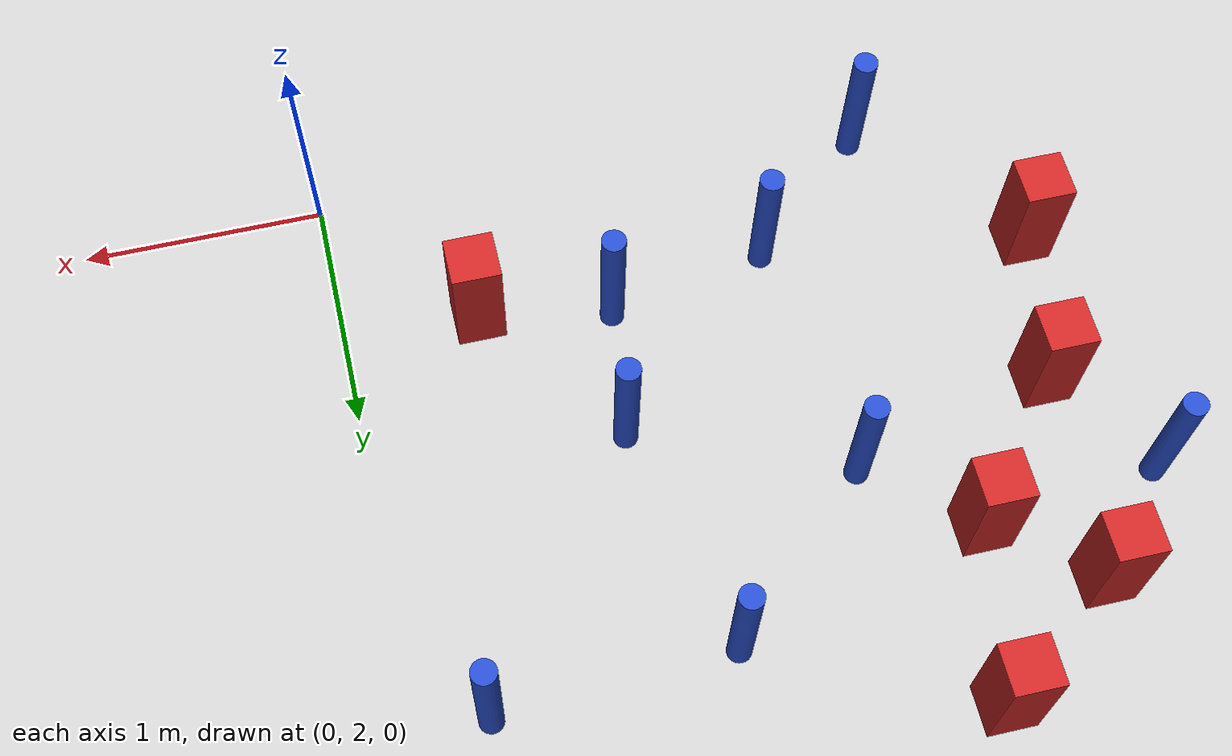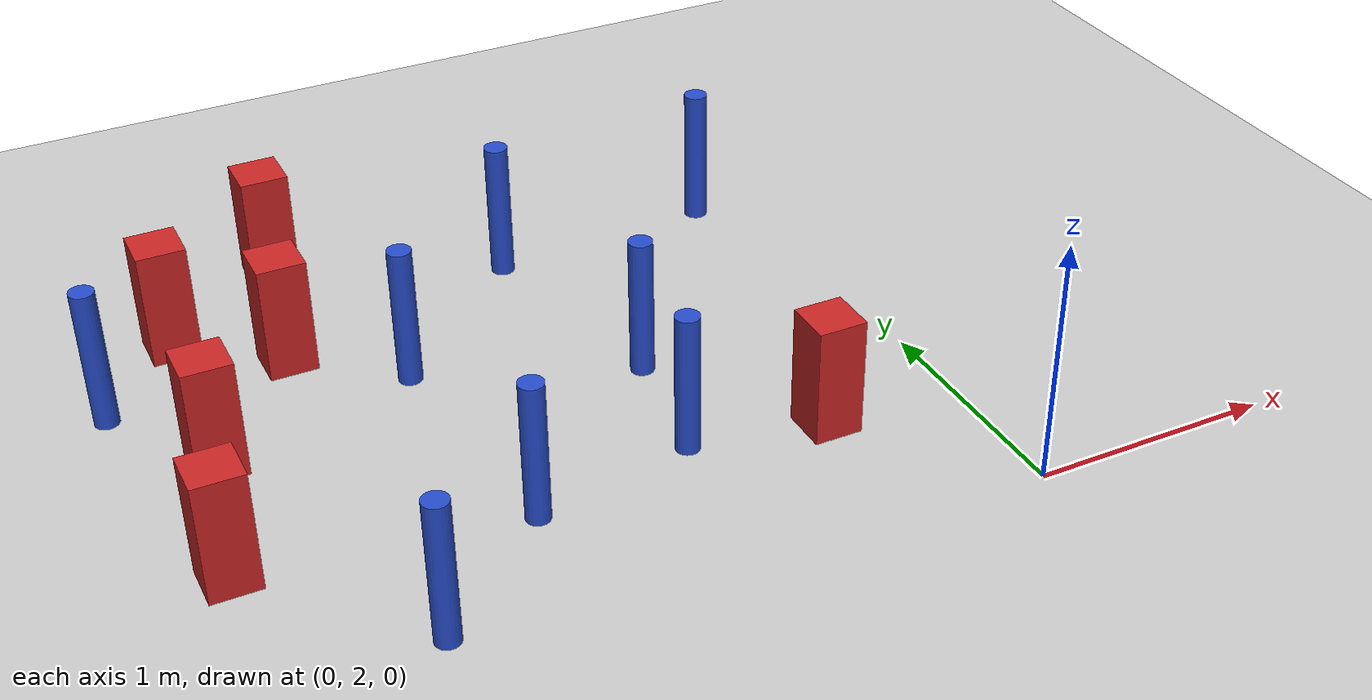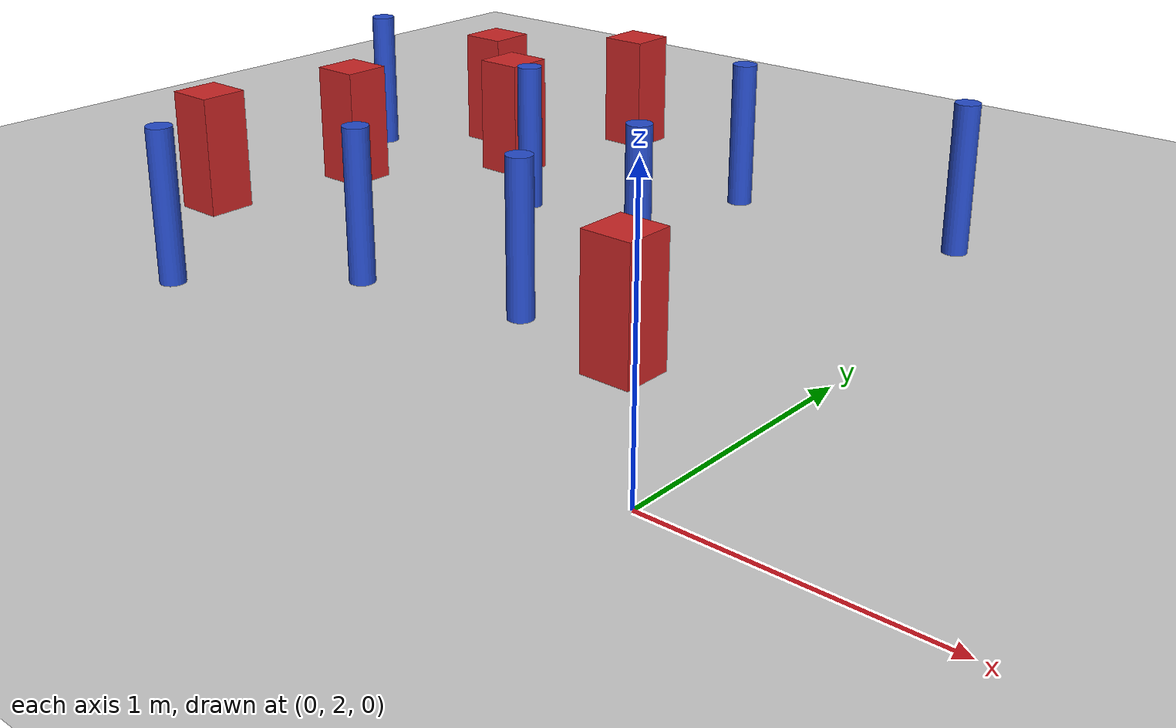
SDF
<sdf version="1.6">
 <world name="default">
  <model name="ground_plane">
   <static>1</static>
   <link name="link">
    <collision name="collision">
     <geometry><plane><normal>0 0 1</normal><size>100 100</size></plane></geometry>
     <surface><friction><ode><mu>100</mu><mu2>50</mu2></ode></friction></surface>
    </collision>
    <visual name="visual">
     <cast_shadows>0</cast_shadows>
     <geometry><plane><normal>0 0 1</normal><size>100 100</size></plane></geometry>
     <material>
      <ambient>1.0 1.0 1.0 1.0</ambient>
      <diffuse>0.8 0.8 0.8 1.0</diffuse>
      <specular>0.01 0.01 0.01 1.000000</specular>
     </material>
    </visual>
   </link>
  </model>
  <model name="square_post_obstacle1">
   <static>true</static>
   <pose>-0.560841671599 2.65041663907 8.22691968438e-08 7.2212513382e-06 -7.54495500217e-07 2.29674213826e-05</pose>
   <link name="link">
    <pose>0 0 0.25 0 -0 0</pose>
    <inertial>
     <mass>100</mass>
     <inertia>
      <ixx>0.166667</ixx>
      <ixy>0</ixy>
      <ixz>0</ixz>
      <iyy>0.166667</iyy>
      <iyz>0</iyz>
      <izz>0.166667</izz>
     </inertia>
    </inertial>
    <collision name="collision"><geometry><box><size>.2 .2 .5</size></box></geometry></collision>
    <visual name="visual">
     <geometry><box><size>.2 .2 .5</size></box></geometry>
     <material>
      <script><name>Gazebo/Red</name><uri>file://media/materials/scripts/gazebo.material</uri></script>
     </material>
    </visual>
   </link>
  </model>
  <model name="pole_obstacle24">
   <static>true</static>
   <pose>-2.304319869 2.16145580614 2.88873142074e-08 -9.90536690232e-09 4.6021994898e-07 -1.20965994968e-07</pose>
   <link name="link">
    <pose>0 0 0.3 0 -0 0</pose>
    <inertial>
     <mass>1</mass>
     <inertia><ixx>0.145833</ixx><ixy>0</ixy><ixz>0</ixz><iyy>0.145833</iyy><iyz>0</iyz><izz>0.125</izz></inertia>
    </inertial>
    <collision name="collision">
     <geometry><cylinder><radius>0.05</radius><length>.6</length></cylinder></geometry>
    </collision>
    <visual name="visual">
     <geometry><cylinder><radius>0.05</radius><length>.6</length></cylinder></geometry>
     <material>
      <script><name>Gazebo/Blue</name><uri>file://media/materials/scripts/gazebo.material</uri></script>
     </material>
    </visual>
   </link>
  </model>
  <model name="square_post_obstacle26">
   <static>true</static>
   <pose>-2.87410063419 2.79433971176 8.22691968438e-08 7.2212513382e-06 -7.54495500217e-07 2.29674213826e-05</pose>
   <link name="link">
    <pose>0 0 0.25 0 -0 0</pose>
    <inertial>
     <mass>100</mass>
     <inertia>
      <ixx>0.166667</ixx>
      <ixy>0</ixy>
      <ixz>0</ixz>
      <iyy>0.166667</iyy>
      <iyz>0</iyz>
      <izz>0.166667</izz>
     </inertia>
    </inertial>
    <collision name="collision"><geometry><box><size>.2 .2 .5</size></box></geometry></collision>
    <visual name="visual">
     <geometry><box><size>.2 .2 .5</size></box></geometry>
     <material>
      <script><name>Gazebo/Red</name><uri>file://media/materials/scripts/gazebo.material</uri></script>
     </material>
    </visual>
   </link>
  </model>
  <model name="pole_obstacle33">
   <static>true</static>
   <pose>-1.88882830112 3.67111143473 2.88873142074e-08 -9.90536689791e-09 4.6021994899e-07 -1.20965994959e-07</pose>
   <link name="link">
    <pose>0 0 0.3 0 -0 0</pose>
    <inertial>
     <mass>1</mass>
     <inertia><ixx>0.145833</ixx><ixy>0</ixy><ixz>0</ixz><iyy>0.145833</iyy><iyz>0</iyz><izz>0.125</izz></inertia>
    </inertial>
    <collision name="collision">
     <geometry><cylinder><radius>0.05</radius><length>.6</length></cylinder></geometry>
    </collision>
    <visual name="visual">
     <geometry><cylinder><radius>0.05</radius><length>.6</length></cylinder></geometry>
     <material>
      <script><name>Gazebo/Blue</name><uri>file://media/materials/scripts/gazebo.material</uri></script>
     </material>
    </visual>
   </link>
  </model>
  <model name="pole_obstacle65">
   <static>true</static>
   <pose>-1.77916049019 2.62491850262 2.88873142074e-08 -9.90536689791e-09 4.6021994899e-07 -1.20965994959e-07</pose>
   <link name="link">
    <pose>0 0 0.3 0 -0 0</pose>
    <inertial>
     <mass>1</mass>
     <inertia><ixx>0.145833</ixx><ixy>0</ixy><ixz>0</ixz><iyy>0.145833</iyy><iyz>0</iyz><izz>0.125</izz></inertia>
    </inertial>
    <collision name="collision">
     <geometry><cylinder><radius>0.05</radius><length>.6</length></cylinder></geometry>
    </collision>
    <visual name="visual">
     <geometry><cylinder><radius>0.05</radius><length>.6</length></cylinder></geometry>
     <material>
      <script><name>Gazebo/Blue</name><uri>file://media/materials/scripts/gazebo.material</uri></script>
     </material>
    </visual>
   </link>
  </model>
  <model name="square_post_obstacle79">
   <static>true</static>
   <pose>-2.29300067203 4.00698000335 8.22691968438e-08 7.22125133819e-06 -7.54495500217e-07 2.29674213826e-05</pose>
   <link name="link">
    <pose>0 0 0.25 0 -0 0</pose>
    <inertial>
     <mass>100</mass>
     <inertia>
      <ixx>0.166667</ixx>
      <ixy>0</ixy>
      <ixz>0</ixz>
      <iyy>0.166667</iyy>
      <iyz>0</iyz>
      <izz>0.166667</izz>
     </inertia>
    </inertial>
    <collision name="collision"><geometry><box><size>.2 .2 .5</size></box></geometry></collision>
    <visual name="visual">
     <geometry><box><size>.2 .2 .5</size></box></geometry>
     <material>
      <script><name>Gazebo/Red</name><uri>file://media/materials/scripts/gazebo.material</uri></script>
     </material>
    </visual>
   </link>
  </model>
  <model name="pole_obstacle90">
   <static>true</static>
   <pose>-0.271523865402 4.33994678662 2.88873142074e-08 -9.90536689618e-09 4.60219948994e-07 -1.20965994956e-07</pose>
   <link name="link">
    <pose>0 0 0.3 0 -0 0</pose>
    <inertial>
     <mass>1</mass>
     <inertia><ixx>0.145833</ixx><ixy>0</ixy><ixz>0</ixz><iyy>0.145833</iyy><iyz>0</iyz><izz>0.125</izz></inertia>
    </inertial>
    <collision name="collision">
     <geometry><cylinder><radius>0.05</radius><length>.6</length></cylinder></geometry>
    </collision>
    <visual name="visual">
     <geometry><cylinder><radius>0.05</radius><length>.6</length></cylinder></geometry>
     <material>
      <script><name>Gazebo/Blue</name><uri>file://media/materials/scripts/gazebo.material</uri></script>
     </material>
    </visual>
   </link>
  </model>
  <model name="pole_obstacle116">
   <static>true</static>
   <pose>-3.04149800342 3.92216286845 2.88873142074e-08 -9.90536689597e-09 4.60219948995e-07 -1.20965994957e-07</pose>
   <link name="link">
    <pose>0 0 0.3 0 -0 0</pose>
    <inertial>
     <mass>1</mass>
     <inertia><ixx>0.145833</ixx><ixy>0</ixy><ixz>0</ixz><iyy>0.145833</iyy><iyz>0</iyz><izz>0.125</izz></inertia>
    </inertial>
    <collision name="collision">
     <geometry><cylinder><radius>0.05</radius><length>.6</length></cylinder></geometry>
    </collision>
    <visual name="visual">
     <geometry><cylinder><radius>0.05</radius><length>.6</length></cylinder></geometry>
     <material>
      <script><name>Gazebo/Blue</name><uri>file://media/materials/scripts/gazebo.material</uri></script>
     </material>
    </visual>
   </link>
  </model>
  <model name="square_post_obstacle128">
   <static>true</static>
   <pose>-2.1533951759 4.71017432588 8.22691968438e-08 7.2212513382e-06 -7.54495500217e-07 2.29674213826e-05</pose>
   <link name="link">
    <pose>0 0 0.25 0 -0 0</pose>
    <inertial>
     <mass>100</mass>
     <inertia>
      <ixx>0.166667</ixx>
      <ixy>0</ixy>
      <ixz>0</ixz>
      <iyy>0.166667</iyy>
      <iyz>0</iyz>
      <izz>0.166667</izz>
     </inertia>
    </inertial>
    <collision name="collision"><geometry><box><size>.2 .2 .5</size></box></geometry></collision>
    <visual name="visual">
     <geometry><box><size>.2 .2 .5</size></box></geometry>
     <material>
      <script><name>Gazebo/Red</name><uri>file://media/materials/scripts/gazebo.material</uri></script>
     </material>
    </visual>
   </link>
  </model>
  <model name="square_post_obstacle153">
   <static>true</static>
   <pose>-2.73536641368 3.4495726755 8.22691968438e-08 7.2212513382e-06 -7.54495500217e-07 2.29674213826e-05</pose>
   <link name="link">
    <pose>0 0 0.25 0 -0 0</pose>
    <inertial>
     <mass>100</mass>
     <inertia>
      <ixx>0.166667</ixx>
      <ixy>0</ixy>
      <ixz>0</ixz>
      <iyy>0.166667</iyy>
      <iyz>0</iyz>
      <izz>0.166667</izz>
     </inertia>
    </inertial>
    <collision name="collision"><geometry><box><size>.2 .2 .5</size></box></geometry></collision>
    <visual name="visual">
     <geometry><box><size>.2 .2 .5</size></box></geometry>
     <material>
      <script><name>Gazebo/Red</name><uri>file://media/materials/scripts/gazebo.material</uri></script>
     </material>
    </visual>
   </link>
  </model>
  <model name="pole_obstacle161">
   <static>true</static>
   <pose>-1.03109139466 3.31322014827 2.88873142074e-08 -9.90536689693e-09 4.60219948993e-07 -1.20965994958e-07</pose>
   <link name="link">
    <pose>0 0 0.3 0 -0 0</pose>
    <inertial>
     <mass>1</mass>
     <inertia><ixx>0.145833</ixx><ixy>0</ixy><ixz>0</ixz><iyy>0.145833</iyy><iyz>0</iyz><izz>0.125</izz></inertia>
    </inertial>
    <collision name="collision">
     <geometry><cylinder><radius>0.05</radius><length>.6</length></cylinder></geometry>
    </collision>
    <visual name="visual">
     <geometry><cylinder><radius>0.05</radius><length>.6</length></cylinder></geometry>
     <material>
      <script><name>Gazebo/Blue</name><uri>file://media/materials/scripts/gazebo.material</uri></script>
     </material>
    </visual>
   </link>
  </model>
  <model name="pole_obstacle174">
   <static>true</static>
   <pose>-1.24285994973 4.28121971793 2.88873142074e-08 -9.90536689852e-09 4.60219948989e-07 -1.2096599496e-07</pose>
   <link name="link">
    <pose>0 0 0.3 0 -0 0</pose>
    <inertial>
     <mass>1</mass>
     <inertia><ixx>0.145833</ixx><ixy>0</ixy><ixz>0</ixz><iyy>0.145833</iyy><iyz>0</iyz><izz>0.125</izz></inertia>
    </inertial>
    <collision name="collision">
     <geometry><cylinder><radius>0.05</radius><length>.6</length></cylinder></geometry>
    </collision>
    <visual name="visual">
     <geometry><cylinder><radius>0.05</radius><length>.6</length></cylinder></geometry>
     <material>
      <script><name>Gazebo/Blue</name><uri>file://media/materials/scripts/gazebo.material</uri></script>
     </material>
    </visual>
   </link>
  </model>
  <model name="square_post_obstacle204">
   <static>true</static>
   <pose>-2.68510115112 4.31787465376 8.22691968438e-08 7.2212513382e-06 -7.54495500217e-07 2.29674213826e-05</pose>
   <link name="link">
    <pose>0 0 0.25 0 -0 0</pose>
    <inertial>
     <mass>100</mass>
     <inertia>
      <ixx>0.166667</ixx>
      <ixy>0</ixy>
      <ixz>0</ixz>
      <iyy>0.166667</iyy>
      <iyz>0</iyz>
      <izz>0.166667</izz>
     </inertia>
    </inertial>
    <collision name="collision"><geometry><box><size>.2 .2 .5</size></box></geometry></collision>
    <visual name="visual">
     <geometry><box><size>.2 .2 .5</size></box></geometry>
     <material>
      <script><name>Gazebo/Red</name><uri>file://media/materials/scripts/gazebo.material</uri></script>
     </material>
    </visual>
   </link>
  </model>
  <model name="pole_obstacle194">
   <static>true</static>
   <pose>-1.10588597011 2.75732080171 2.88873142074e-08 -9.90536689791e-09 4.6021994899e-07 -1.20965994959e-07</pose>
   <link name="link">
    <pose>0 0 0.3 0 -0 0</pose>
    <inertial>
     <mass>1</mass>
     <inertia><ixx>0.145833</ixx><ixy>0</ixy><ixz>0</ixz><iyy>0.145833</iyy><iyz>0</iyz><izz>0.125</izz></inertia>
    </inertial>
    <collision name="collision">
     <geometry><cylinder><radius>0.05</radius><length>.6</length></cylinder></geometry>
    </collision>
    <visual name="visual">
     <geometry><cylinder><radius>0.05</radius><length>.6</length></cylinder></geometry>
     <material>
      <script><name>Gazebo/Blue</name><uri>file://media/materials/scripts/gazebo.material</uri></script>
     </material>
    </visual>
   </link>
  </model>
 </world>
</sdf>
